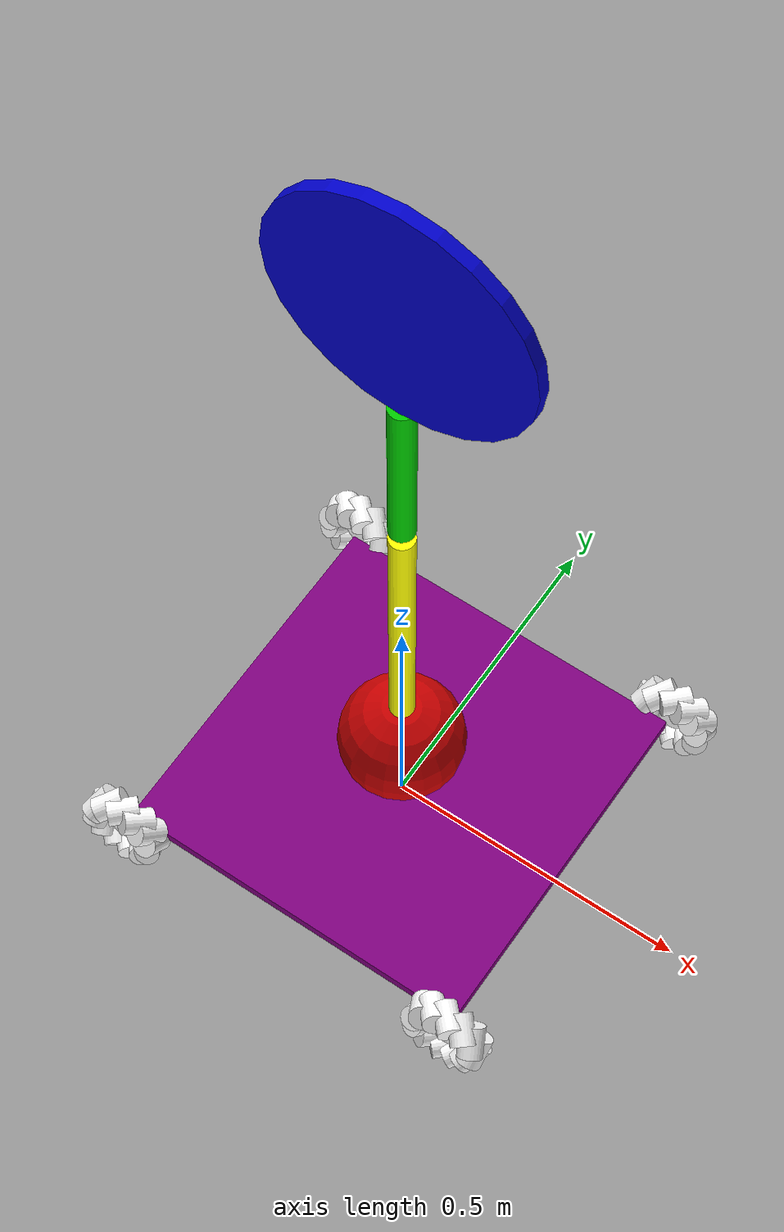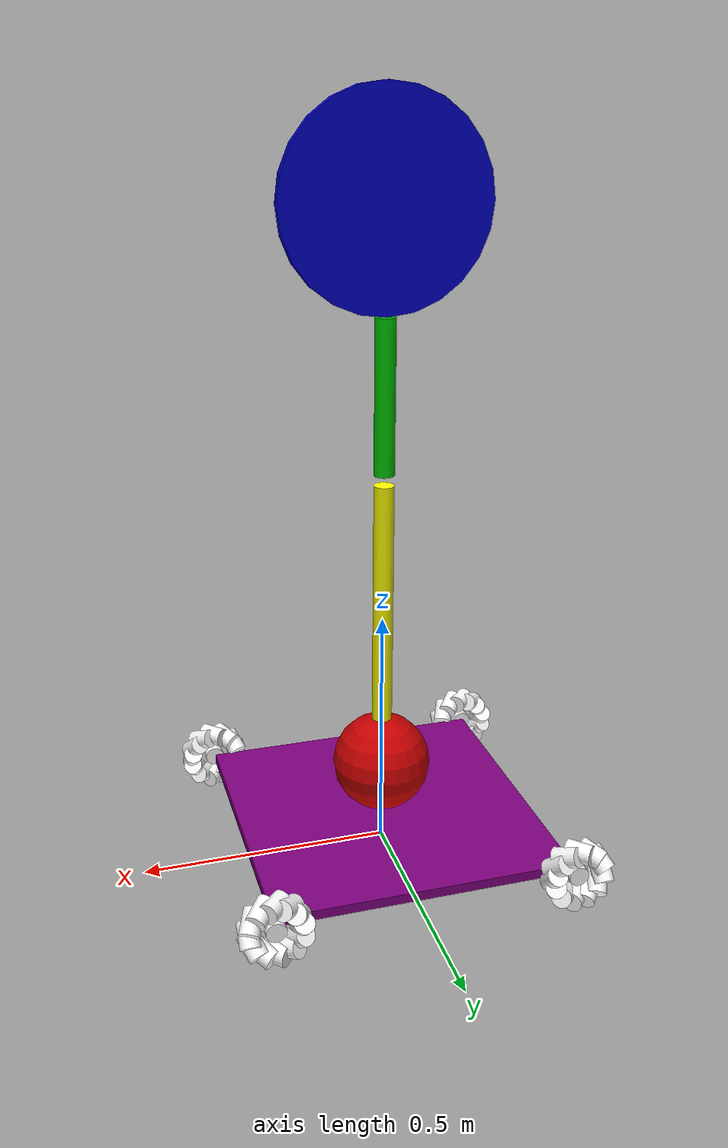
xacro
<?xml version="1.0"?>
<robot xmlns:xacro="http://www.ros.org/wiki/xacro"  name="smash_bot">

<!-- Core Files -->
<!-- Not Useful as it has seprate defination of each wheel instead of using wheel macro -->
<xacro:include filename="mec_robot_core.xacro" />

<!-- Controllers -->
<xacro:include filename="ros2_control.xacro" />

</robot>

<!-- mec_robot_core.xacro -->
<robot xmlns:xacro="http://www.ros.org/wiki/xacro">
    <xacro:include filename="inertial_macros.xacro" />
    <xacro:include filename="arm2_core.xacro" />

    <!-- Colors -->
    <material name="purple">
        <color rgba="0.5 0 0.5 1"/>
    </material>

    <material name="white">
        <color rgba="1 1 1 1"/>
    </material>

    <!-- Chassis Properties -->
    <xacro:property name="chassis_width" value="0.6"/>       <!-- 6 meter = 600 cm -->
    <xacro:property name="chassis_height" value="0.6"/>      <!-- 6 meter = 600 cm -->
    <xacro:property name="chassis_depth" value="0.02"/>      <!-- 0.02meter = 2 cm -->
    <xacro:property name="chassis_mass" value="1"/>          <!-- 1 kg -->

    <!-- Wheel Properties -->
    <xacro:property name="wheel_radius" value="0.02"/>
    <xacro:property name="wheel_width" value="0.02"/>
    <xacro:property name="wheel_mass" value="1"/>

    <!-- Wheel Macro -->
    <xacro:macro name="wheel_macro" params="wheel_name wheel_color">    <!-- mu max_val=1 (max friction) min_val=0(min friction) -->
        <link name="${wheel_name}">
            <visual>
                <origin xyz="0 0 0" rpy="0 0 0"/>
                <geometry>
                   <cylinder length="${wheel_width}" radius="${wheel_radius}" />
                </geometry>
                <material name="white"/>
            </visual>

            <collision>
                <origin xyz="0 0 0" rpy="0 0 0"/>
                <geometry>
                    <cylinder length="${wheel_width}" radius="${wheel_radius}" />
                </geometry>
            </collision>

            <xacro:inertial_cylinder mass="${wheel_mass}" length="${wheel_width}" radius="${wheel_radius}">
                <origin xyz="0 0 0" rpy="0 0 0"/>
            </xacro:inertial_cylinder>
        </link>

        <gazebo reference="${wheel_name}">
            <material>${wheel_color}</material>
        </gazebo>

    </xacro:macro>

    <!-- Roller Macro -->
    <xacro:macro name="roller_macro" params="sno base_wheel x y z roll pitch yaw">

        <!-- Roller Link -->
        <link name="roll_${sno}">

            <visual>
                <origin xyz="0 0 0" rpy="0 0 0"/>
                <geometry>
                   <cylinder length="0.05" radius="0.02" />
                </geometry>
                <material name="white"/>
            </visual>

            <collision>
                <origin xyz="0 0 0" rpy="0 0 0"/>
                <geometry>
                    <cylinder length="0.05" radius="0.02" />
                </geometry>
            </collision>

            <xacro:inertial_cylinder mass="0.001" length="0.028" radius="0.105">    <!-- Length=28mm radius=10.5 -->
            <!-- Actual value but not the best -->
                <origin xyz="0 0 0" rpy="0 0 0"/>
            </xacro:inertial_cylinder>

        </link>

        <gazebo reference="roll_${sno}">
            <material>Gazebo/Yellow</material>
        </gazebo>

        <joint name="r_joint_${sno}" type="continuous">
            <parent link="${base_wheel}" />
            <child link="roll_${sno}" />
            <origin xyz="${x} ${y} ${z}" rpy="${roll} ${pitch} ${yaw}" />
            <axis xyz="0 0 1"/>
        </joint>

    </xacro:macro>

    <!-- Roller Group Macro -->
    <xacro:macro name="roller_group_macro" params="base_wheel roller_angle" >

        <!-- Roller_1 -->
        <xacro:roller_macro sno="1_${base_wheel}" base_wheel="${base_wheel}" x="0.05" y="0.0" z="0.0" roll="${roller_angle}" pitch="0.0" yaw="0.0" />

        <!-- Roller_2 -->
        <xacro:roller_macro sno="2_${base_wheel}" base_wheel="${base_wheel}" x="0.043301" y="0.025" z="0.0" roll="${roller_angle}" pitch="0.0" yaw="0.5236" />

        <!-- Roller_3 -->
        <xacro:roller_macro sno="3_${base_wheel}" base_wheel="${base_wheel}" x="0.025" y="0.043301" z="0.0" roll="${roller_angle}" pitch="0.0" yaw="1.0472" />

        <!-- Roller_4 -->
        <xacro:roller_macro sno="4_${base_wheel}" base_wheel="${base_wheel}" x="0.0" y="0.05" z="0.0" roll="${roller_angle}" pitch="0.0" yaw="1.5708" />

        <!-- Roller_5 -->
        <xacro:roller_macro sno="5_${base_wheel}" base_wheel="${base_wheel}" x="-0.025" y="0.043301" z="0.0" roll="${roller_angle}" pitch="0.0" yaw="2.0944" />

        <!-- Roller_6 -->
        <xacro:roller_macro sno="6_${base_wheel}" base_wheel="${base_wheel}" x="-0.043301" y="0.025" z="0.0" roll="${roller_angle}" pitch="0.0" yaw="2.6180" />

        <!-- Roller_7 -->
        <xacro:roller_macro sno="7_${base_wheel}" base_wheel="${base_wheel}" x="-0.05" y="0.0" z="0.0" roll="${roller_angle}" pitch="0.0" yaw="3.1416" />

        <!-- Roller_8 -->
        <xacro:roller_macro sno="8_${base_wheel}" base_wheel="${base_wheel}" x="-0.043301" y="-0.025" z="0.0" roll="${roller_angle}" pitch="0.0" yaw="3.6652" />

        <!-- Roller_9 -->
        <xacro:roller_macro sno="9_${base_wheel}" base_wheel="${base_wheel}" x="-0.025" y="-0.043301" z="0.0" roll="${roller_angle}" pitch="0.0" yaw="4.1888" />

        <!-- Roller_10 -->
        <xacro:roller_macro sno="10_${base_wheel}" base_wheel="${base_wheel}" x="0.0" y="-0.05" z="0.0" roll="${roller_angle}" pitch="0.0" yaw="4.7124" />

        <!-- Roller_11 -->
        <xacro:roller_macro sno="11_${base_wheel}" base_wheel="${base_wheel}" x="0.025" y="-0.043301" z="0.0" roll="${roller_angle}" pitch="0.0" yaw="5.2360" />

        <!-- Roller_12 -->

        <xacro:roller_macro sno="12_${base_wheel}" base_wheel="${base_wheel}" x="0.043301" y="-0.025" z="0.0" roll="${roller_angle}" pitch="0.0" yaw="5.7596" />

        <!-- 9 rollers wheel set -->

    </xacro:macro>

    <!-- INTEGRATING COMPONENTS -->

    <!-- BASE LINK -->
    <link name="base_link">
    </link>

    <!-- Chassis Link -->
    <joint name="chassis_joint" type="fixed">
        <parent link="base_link"/>
        <child link="chassis_link"/>
        <origin xyz="0 0 0.06"/>    <!-- xyz = 0, 0, height_to_raise + chassis_depth/2 -->
    </joint>

    <link name="chassis_link">
        <visual>
            <origin xyz="0 0 0" rpy="0 0 0"/>
            <geometry>
                <box size="${chassis_width} ${chassis_height} ${chassis_depth}"/>
            </geometry>
            <material name="purple"/>
        </visual>

        <collision>
            <origin xyz="0 0 0" rpy="0 0 0"/>
            <geometry>
                <box size="${chassis_width} ${chassis_height} ${chassis_depth}"/>
            </geometry>
        </collision>

        <xacro:inertial_box mass="${chassis_mass}" x="${chassis_width}" y="${chassis_height}" z="${chassis_depth}">
            <origin xyz="0 0 0" rpy="0 0 0"/>
        </xacro:inertial_box>
    </link>

    <gazebo reference="chassis_link">
        <material>Gazebo/Purple</material>
    </gazebo>

    <!-- Front Left Wheel -->

    <joint name="dummy_left_joint" type="continuous">
        <parent link="chassis_link" />
        <child link="front_left_link" />
        <origin xyz="0.3 0.32 0" rpy="${pi/2} 0 0" />
        <axis xyz="0 0 -1"/>
    </joint>

    <xacro:wheel_macro wheel_name="front_left_link" wheel_color="Gazebo/Green"/>
    <xacro:roller_group_macro base_wheel="front_left_link" roller_angle="${-pi/4}"/>    <!-- roller_angle= ${pi/4} or ${-pi/4} -->

    <!-- Front Right Wheel -->

    <joint name="dummy_right_joint" type="continuous">
        <parent link="chassis_link" />
        <child link="front_right_link" />
        <origin xyz="0.3 -0.32 0" rpy="${pi/2} 0 0" />
        <axis xyz="0 0 -1"/>
    </joint>

    <xacro:wheel_macro wheel_name="front_right_link" wheel_color="Gazebo/Green"/>
    <xacro:roller_group_macro base_wheel="front_right_link" roller_angle="${pi/4}"/>    <!-- roller_angle= ${pi/4} or ${-pi/4}-->

    <!-- Rear Left Wheel -->

    <joint name="left_wheel_joint" type="continuous">
        <parent link="chassis_link" />
        <child link="rear_left_link" />
        <origin xyz="-0.3 0.32 0" rpy="${pi/2} 0 0" />
        <axis xyz="0 0 -1"/>
        <!-- 0.3 (half chassis width) + 0.01 (half tyer width) + 0.01 (safety margin). -->
    </joint>

    <xacro:wheel_macro wheel_name="rear_left_link" wheel_color="Gazebo/Yellow"/>
    <xacro:roller_group_macro base_wheel="rear_left_link" roller_angle="${pi/4}"/>    <!-- roller_angle= ${pi/4} or ${-pi/4} -->

    <!-- Rear Right Wheel -->

    <joint name="right_wheel_joint" type="continuous">
        <parent link="chassis_link" />
        <child link="rear_right_link" />
        <origin xyz="-0.3 -0.32 0" rpy="${pi/2} 0 0" />
        <axis xyz="0 0 -1"/>

    </joint>

    <xacro:wheel_macro wheel_name="rear_right_link" wheel_color="Gazebo/Yellow"/>
    <xacro:roller_group_macro base_wheel="rear_right_link" roller_angle="${-pi/4}"/>    <!-- roller_angle= ${pi/4} or ${-pi/4}-->

    <!-- ARM -->
    <xacro:arm_macro/>

</robot>

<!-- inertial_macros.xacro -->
<robot xmlns:xacro="http://www.ros.org/wiki/xacro" >

    <!-- Specify some standard inertial calculations https://en.wikipedia.org/wiki/List_of_moments_of_inertia -->

    <xacro:macro name="inertial_sphere" params="mass radius *origin">
        <inertial>
            <xacro:insert_block name="origin"/>
            <mass value="${mass}" />
            <inertia ixx="${(2/5) * mass * (radius*radius)}" ixy="0.0" ixz="0.0"
                    iyy="${(2/5) * mass * (radius*radius)}" iyz="0.0"
                    izz="${(2/5) * mass * (radius*radius)}" />
        </inertial>
    </xacro:macro>

    <xacro:macro name="inertial_box" params="mass x y z *origin">
        <inertial>
            <xacro:insert_block name="origin"/>
            <mass value="${mass}" />
            <inertia ixx="${(1/12) * mass * (y*y+z*z)}" ixy="0.0" ixz="0.0"
                    iyy="${(1/12) * mass * (x*x+z*z)}" iyz="0.0"
                    izz="${(1/12) * mass * (x*x+y*y)}" />
        </inertial>
    </xacro:macro>

    <xacro:macro name="inertial_cylinder" params="mass length radius *origin">
        <inertial>
            <xacro:insert_block name="origin"/>
            <mass value="${mass}" />
            <inertia ixx="${(1/12) * mass * (3*radius*radius + length*length)}" ixy="0.0" ixz="0.0"
                    iyy="${(1/12) * mass * (3*radius*radius + length*length)}" iyz="0.0"
                    izz="${(1/2) * mass * (radius*radius)}" />
        </inertial>
    </xacro:macro>

</robot>

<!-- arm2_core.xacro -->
<robot xmlns:xacro="http://www.ros.org/wiki/xacro">

    <xacro:macro name="arm_macro">

        <xacro:include filename="inertial_macros.xacro" />

        <!-- Variables -->
        <xacro:property name="sphere_radius" value="0.1"/>
        <xacro:property name="sphere_mass" value="0.5"/>

        <xacro:property name="l2_length" value="0.5"/>
        <xacro:property name="l3_length" value="0.3"/>
        <xacro:property name="l4_length" value="0.15"/>

        <xacro:property name="racquet_thickness" value="0.02"/>
        <xacro:property name="racquet_radius" value="0.2"/>

        <xacro:property name="general_mass" value="0.1"/>
        <xacro:property name="general_radius" value="0.02"/>

        <!-- MATERIALS -->

        <material name="Black">
          <color rgba="0.0 0.0 0.0 1.0"/>
        </material>

        <material name="Blue">
          <color rgba="0.0 0.0 0.8 1.0"/>
        </material>

        <material name="Green">
          <color rgba="0.0 0.8 0.0 1.0"/>
        </material>

        <material name="Grey">
          <color rgba="0.2 0.2 0.2 1.0"/>
        </material>

        <material name="Orange">
          <color rgba="${255/255} ${108/255} ${10/255} 1.0"/>
        </material>

        <material name="Brown">
          <color rgba="${222/255} ${207/255} ${195/255} 1.0"/>
        </material>

        <material name="Red">
          <color rgba="0.8 0.0 0.0 1.0"/>
        </material>

        <material name="Yellow">
          <color rgba="1.0 1.0 0.0 1.0"/>
        </material>

        <!-- ARM LINK MACRO -->
        <xacro:macro name="link_macro" params="name length radius color *origin">

            <link name="${name}">
                <visual>
                    <xacro:insert_block name="origin"/>
                    <geometry>
                        <cylinder length="${length}" radius="${radius}" />
                    </geometry>
                    <material name="${color}"/>
                </visual>

                <collision>
                    <geometry>
                        <cylinder length="${length}" radius="${radius}" />
                    </geometry>
                </collision>

                <xacro:inertial_cylinder mass="${general_mass}" length="${length}" radius="${radius}" >
                    <origin xyz="0 0 0" rpy="0 0 0"/>
                </xacro:inertial_cylinder>

            </link>

            <gazebo reference="${name}">
                <material>Gazebo/${color}</material>
            </gazebo>

        </xacro:macro>

        <!-- BASE LINK -->

        <xacro:link_macro name="base_link_x" length="0.000001" radius="0.000001" color="Red">
            <origin xyz="0 0 0" rpy="0 0 0"/>
        </xacro:link_macro>

        <xacro:link_macro name="base_link_y" length="0.000001" radius="0.000001" color="Red">
            <origin xyz="0 0 0" rpy="0 0 0"/>
        </xacro:link_macro>

        <xacro:link_macro name="base_link_z" length="0.000001" radius="0.000001" color="Red">
            <origin xyz="0 0 0" rpy="0 0 0"/>
        </xacro:link_macro>

        <!-- JOINTS -->
        <joint name="ground" type="fixed">
            <parent link="chassis_link"/>
            <child link="base_link_x"/>
            <origin xyz="0 0 0.12" rpy="0 0 0"/>
        </joint>

        <joint name="base_link_x_y" type="revolute">
            <parent link="base_link_x"/>
            <child link="base_link_y"/>
            <origin xyz="0 0 0" rpy="0 0 0"/>
            <limit upper="${pi/2}" lower="${-pi/2}" velocity="20" effort="1"/>
            <axis xyz="1 0 0"/>
        </joint>

        <joint name="base_link_y_z" type="revolute">
            <parent link="base_link_y"/>
            <child link="base_link_z"/>
            <origin xyz="0 0 0" rpy="0 0 0"/>
            <limit upper="${pi/2}" lower="${-pi/2}" velocity="20" effort="1"/>
            <axis xyz="0 1 0"/>
        </joint>

        <!-- LINK_1 -->
        <joint name="base_link_z_1" type="continuous">
            <parent link="base_link_z"/>
            <child link="link_1"/>
            <origin xyz="0 0 0" rpy="0 0 0"/>
            <axis xyz="0 0 1"/>
        </joint>

        <link name="link_1">
            <visual>
                <origin xyz="0 0 0" rpy="0 0 0"/>
                <geometry>
                    <sphere radius="${sphere_radius}"/>
                </geometry>
                <material name="Red"/>
            </visual>

            <collision>
                <geometry>
                    <sphere radius="${sphere_radius}"/>
                </geometry>
            </collision>

            <xacro:inertial_sphere mass="${sphere_mass}" radius="${sphere_radius}">
                <origin xyz="0 0 0" rpy="0 0 0"/>
            </xacro:inertial_sphere>
        </link>

        <gazebo reference="link_1">
            <material>Gazebo/Red</material>
        </gazebo>

        <!-- LINK_2 -->
        <joint name="l2_joint" type="fixed">
            <parent link="link_1"/>
            <child link="link_2"/>
            <origin xyz="0 0 ${sphere_radius}" rpy="0 0 0"/>
        </joint>

        <xacro:link_macro name="link_2" length="${l2_length}" radius="${general_radius}" color="Yellow">
            <origin xyz="0 0 ${l2_length/2}" rpy="0 0 0"/>
        </xacro:link_macro>

        <!-- LINK_3 -->
        <joint name="l3_joint" type="revolute">
            <parent link="link_2"/>
            <child link="link_3"/>
            <origin xyz="0 0 ${l2_length + general_radius}" rpy="0 0 0"/>
            <limit upper="${pi/2}" lower="${-pi/2}" velocity="20" effort="1"/>
            <axis xyz="1 0 0"/>
        </joint>

        <xacro:link_macro name="link_3" length="${l3_length}" radius="${general_radius}" color="Green">
            <origin xyz="0 0 ${l3_length/2}" rpy="0 0 0"/>
        </xacro:link_macro>

        <!-- LINK_4 -->

        <!-- LINK_5 (Racquet)-->
        <joint name="racquet_joint" type="fixed">
            <parent link="link_3"/>
            <child link="racquet_link"/>
            <origin xyz="0 0 ${l3_length + racquet_radius}" rpy="${pi/2} 0 0"/>
        </joint>

        <xacro:link_macro name="racquet_link" length="${racquet_thickness}" radius="${racquet_radius}" color="Blue">
            <origin xyz="0 0 0" rpy="0 0 0"/>
        </xacro:link_macro>

    </xacro:macro>

</robot>
